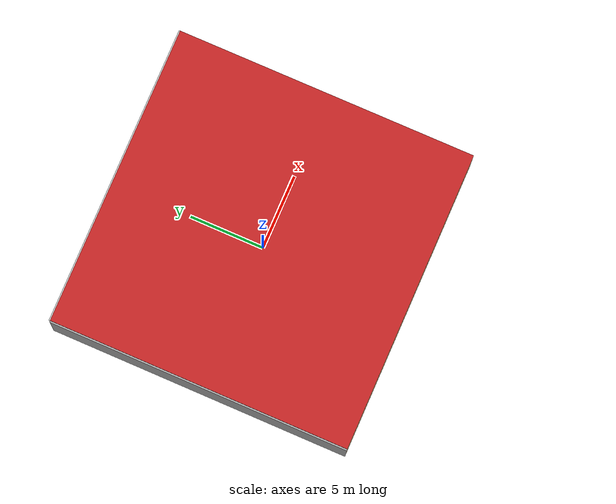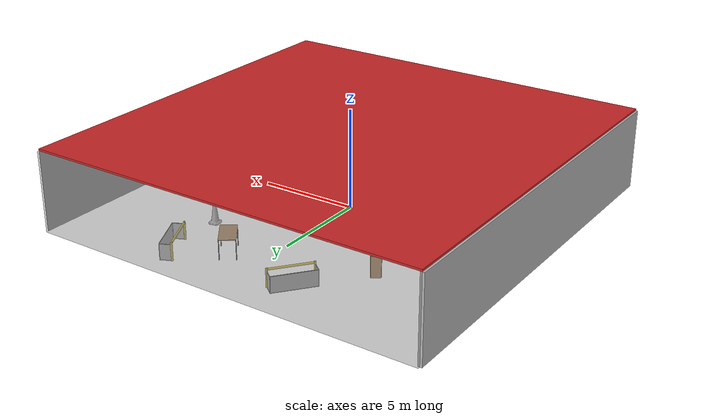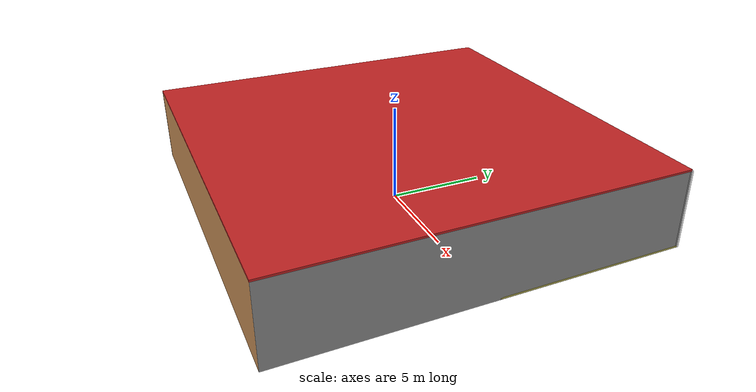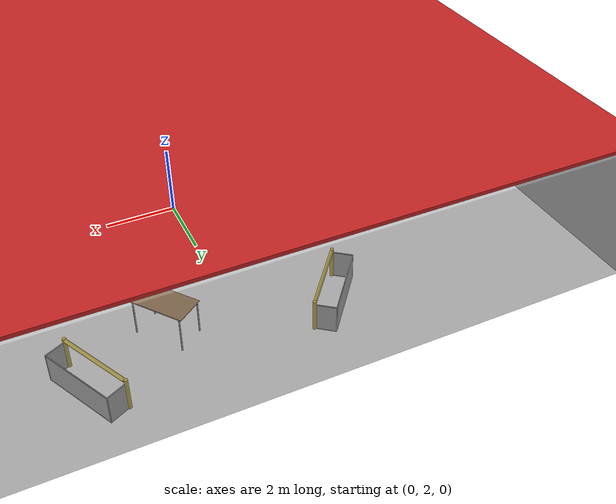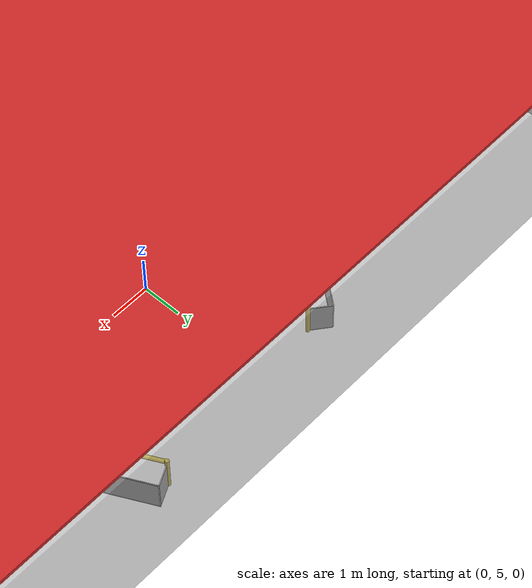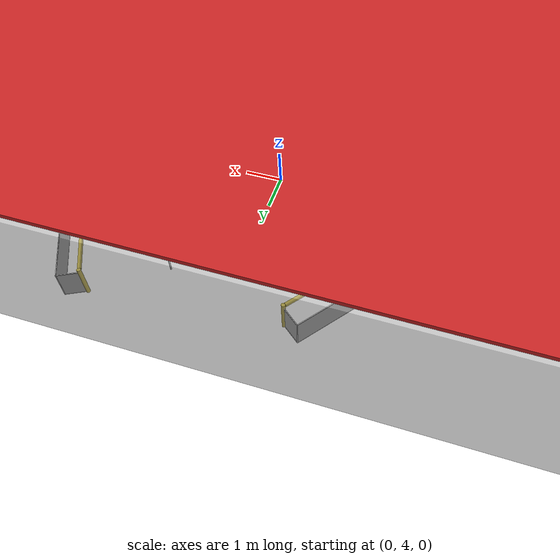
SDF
<sdf version="1.4">
 <world name="default">
  <physics type="ode">
   <max_step_size>0.001</max_step_size>
   <real_time_factor>1</real_time_factor>
   <real_time_update_rate>1000</real_time_update_rate>
   <gravity>0 0 -9.8</gravity>
  </physics>
  <scene><ambient>0.4 0.4 0.4 1</ambient><background>0.7 0.7 0.7 1</background><shadows>1</shadows></scene>
  <model name="Surrounding">
   <static>1</static>
   <link name="Ceiling">
    <collision name="Ceiling_Collision"><geometry><box><size>20 20 0.1</size></box></geometry></collision>
    <visual name="Ceiling_Visual">
     <geometry><box><size>20 20 0.1</size></box></geometry>
     <material>
      <script><uri>file://media/materials/scripts/gazebo.material</uri><name>Gazebo/RedGlow</name></script>
     </material>
    </visual>
    <pose>0 0 4.05 0 0 0</pose>
   </link>
   <link name="Wall_South">
    <collision name="Wall_South_Collision">
     <geometry><box><size>20 0 4</size></box></geometry>
     <pose>0 0 2 0 -0 0</pose>
    </collision>
    <visual name="Wall_South_Visual">
     <pose>0 0 2 0 -0 0</pose>
     <geometry><box><size>20 0 4</size></box></geometry>
     <material>
      <script><uri>file://media/materials/scripts/gazebo.material</uri><name>Gazebo/Wood</name></script>
     </material>
    </visual>
    <velocity_decay><linear>0</linear><angular>0</angular></velocity_decay>
    <pose>0 -10 0 0 -0 0</pose>
   </link>
   <link name="Wall_East">
    <collision name="Wall_21_Collision">
     <geometry><box><size>20 0 4</size></box></geometry>
     <pose>0 0 2 0 -0 0</pose>
    </collision>
    <visual name="Wall_21_Visual">
     <pose>0 0 2 0 -0 0</pose>
     <geometry><box><size>20 0 4</size></box></geometry>
     <material>
      <script><uri>file://media/materials/scripts/gazebo.material</uri><name>Gazebo/GreyGradientSky</name></script>
     </material>
    </visual>
    <velocity_decay><linear>0</linear><angular>0</angular></velocity_decay>
    <pose>10 0 0 0 -0 1.5708</pose>
   </link>
   <link name="Wall_North">
    <collision name="Wall_22_Collision">
     <geometry><box><size>20 0.2 4</size></box></geometry>
     <pose>0 0 2 0 -0 0</pose>
    </collision>
    <visual name="Wall_22_Visual">
     <pose>0 0 2 0 -0 0</pose>
     <geometry><box><size>20 0.2 4</size></box></geometry>
     <material>
      <script><uri>file://media/materials/scripts/gazebo.material</uri><name>Gazebo/GreyTransparent</name></script>
     </material>
    </visual>
    <velocity_decay><linear>0</linear><angular>0</angular></velocity_decay>
    <pose>0 10 0 0 -0 0</pose>
   </link>
   <link name="Wall_West">
    <collision name="Wall_23_Collision">
     <geometry><box><size>20 0.2 4</size></box></geometry>
     <pose>0 0 2 0 -0 0</pose>
    </collision>
    <visual name="Wall_23_Visual">
     <pose>0 0 2 0 -0 0</pose>
     <geometry><box><size>20 0.2 4</size></box></geometry>
     <material>
      <script><uri>file://media/materials/scripts/gazebo.material</uri><name>Gazebo/PioneerBody</name></script>
     </material>
    </visual>
    <velocity_decay><linear>0</linear><angular>0</angular></velocity_decay>
    <pose>-10 0 0 0 0 -1.5708</pose>
   </link>
   <link name="Ground_link">
    <collision name="collision">
     <pose>0 0 .05 0 -0 0</pose>
     <geometry><box><size>20 20 0.1</size></box></geometry>
    </collision>
    <visual name="visual">
     <pose>0 0 .05 0 -0 0</pose>
     <geometry><box><size>20 20 0.1</size></box></geometry>
     <material>
      <script>
       <uri>file://media/materials/scripts/gazebo.material</uri>
       <name>Gazebo/YellowTransparent</name>
      </script>
     </material>
    </visual>
   </link>
   <static>1</static>
  </model>
  <spherical_coordinates>
   <surface_model>EARTH_WGS84</surface_model>
   <latitude_deg>0</latitude_deg>
   <longitude_deg>0</longitude_deg>
   <elevation>0</elevation>
   <heading_deg>0</heading_deg>
  </spherical_coordinates>
  <light name="lightball_0" type="diffuse">
   <diffuse>0.8 0.8 0.8 1</diffuse>
   <specular>0.2 0.2 0.2 1</specular>
   <attenuation>
    <range>100</range>
    <constant>0.7</constant>
    <linear>0.01</linear>
    <quadratic>0.001</quadratic>
   </attenuation>
   <direction>-0.5 0.1 -0.9</direction>
   <pose>-1.46615616055 1.88646837623 3.45548741838 0 0 0</pose>
  </light>
  <light name="lightball_1" type="diffuse">
   <diffuse>0.8 0.8 0.8 1</diffuse>
   <specular>0.2 0.2 0.2 1</specular>
   <attenuation>
    <range>100</range>
    <constant>0.7</constant>
    <linear>0.01</linear>
    <quadratic>0.001</quadratic>
   </attenuation>
   <direction>-0.5 0.1 -0.9</direction>
   <pose>-5.46675970544 1.58656633452 1.1051964291 0 0 0</pose>
  </light>
  <light name="lightball_2" type="diffuse">
   <diffuse>0.8 0.8 0.8 1</diffuse>
   <specular>0.2 0.2 0.2 1</specular>
   <attenuation>
    <range>100</range>
    <constant>0.7</constant>
    <linear>0.01</linear>
    <quadratic>0.001</quadratic>
   </attenuation>
   <direction>-0.5 0.1 -0.9</direction>
   <pose>-2.60723093299 -0.153411435441 2.06181290509 0 0 0</pose>
  </light>
  <include><uri>model://cabinet</uri><pose>-4.73984015815 4.97349414283 0 0 0 2.17088558973</pose></include>
  <include>
   <uri>model://robocup_3Dsim_goal</uri>
   <pose>-2.22196490444 7.61292372363 0 0 0 2.47104706228</pose>
  </include>
  <include><uri>model://cabinet</uri><pose>0.704225304383 -1.4691574446 0 0 0 2.98581727033</pose></include>
  <include><uri>model://table</uri><pose>1.76484619062 6.94121135768 0 0 0 2.21519333761</pose></include>
  <include>
   <uri>model://construction_cone</uri>
   <pose>4.05484206657 1.38145626126 0 0 0 0.152470011032</pose>
  </include>
  <include>
   <uri>model://construction_cone</uri>
   <pose>4.24518882251 4.96187362377 0 0 0 1.78405898731</pose>
  </include>
  <include>
   <uri>model://robocup_3Dsim_goal</uri>
   <pose>3.78167803036 7.97655122455 0 0 0 0.461689058961</pose>
  </include>
  <include>
   <uri>model://textured_shapes</uri>
   <pose>7.35708846822 -4.13497856885 0 0 0 3.08266337135</pose>
  </include>
  <include><uri>model://cabinet</uri><pose>7.10547675875 -1.32098912959 0 0 0 1.24126474353</pose></include>
  <include>
   <uri>model://construction_cone</uri>
   <pose>7.126051752 2.15729333337 0 0 0 0.946493038524</pose>
  </include>
 </world>
</sdf>

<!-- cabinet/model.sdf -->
<sdf version="1.5">
  <model name="cabinet">
    <static>true</static>
    <link name="cabinet_bottom_plate">
      <inertial>
        <pose>0 0 -1 0 0 0</pose>
        <inertia>
          <ixx>2.050000</ixx>
          <ixy>0</ixy>
          <ixz>0</ixz>
          <iyy>2.050000</iyy>
          <iyz>0</iyz>
          <izz>2.050000</izz>
        </inertia>
        <mass>25.000000</mass>
      </inertial>
      <collision name="cabinet_bottom_plate_geom">
        <pose>0 0 0.010000 0 0 0</pose>
        <geometry>
          <box>
            <size>0.450000 0.450000 0.020000</size>
          </box>
        </geometry>
      </collision>
      <visual name="cabinet_bottom_plate_geom_visual">
        <pose>0 0 0.010000 0 0 0</pose>
        <geometry>
          <box>
            <size>0.450000 0.450000 0.020000</size>
          </box>
        </geometry>
        <material>
          <script>
            <uri>model://media/materials/scripts/gazebo.material</uri>
            <name>Gazebo/Wood</name>
          </script>
        </material>
      </visual>
      <collision name="cabinet_bottom_plate_geom_cabinet_back_plate">
        <pose>0.235000 0 0.510000 0 0 0</pose>
        <geometry>
          <box>
            <size>0.020000 0.450000 1.020000</size>
          </box>
        </geometry>
      </collision>
      <visual name="cabinet_bottom_plate_geom_cabinet_back_plate_visual">
        <pose>0.235000 0 0.510000 0 0 0</pose>
        <geometry>
          <box>
            <size>0.020000 0.450000 1.020000</size>
          </box>
        </geometry>
        <material>
          <script>
            <uri>model://media/materials/scripts/gazebo.material</uri>
            <name>Gazebo/Wood</name>
          </script>
        </material>
      </visual>
      <collision name="cabinet_bottom_plate_geom_cabinet_left_plate">
        <pose>0 0.235000 0.510000 0 0 0</pose>
        <geometry>
          <box>
            <size>0.450000 0.020000 1.020000</size>
          </box>
        </geometry>
      </collision>
      <visual name="cabinet_bottom_plate_geom_cabinet_left_plate_visual">
        <pose>0 0.235000 0.510000 0 0 0</pose>
        <geometry>
          <box>
            <size>0.450000 0.020000 1.020000</size>
          </box>
        </geometry>
        <material>
          <script>
            <uri>model://media/materials/scripts/gazebo.material</uri>
            <name>Gazebo/Wood</name>
          </script>
        </material>
      </visual>
      <collision name="cabinet_bottom_plate_geom_cabinet_middle_plate">
        <pose>0 0 0.510000 0 0 0</pose>
        <geometry>
          <box>
            <size>0.450000 0.450000 0.020000</size>
          </box>
        </geometry>
      </collision>
      <visual name="cabinet_bottom_plate_geom_cabinet_middle_plate_visual">
        <pose>0 0 0.510000 0 0 0</pose>
        <geometry>
          <box>
            <size>0.450000 0.450000 0.020000</size>
          </box>
        </geometry>
        <material>
          <script>
            <uri>model://media/materials/scripts/gazebo.material</uri>
            <name>Gazebo/Wood</name>
          </script>
        </material>
      </visual>
      <collision name="cabinet_bottom_plate_geom_cabinet_right_plate">
        <pose>0 -0.235000 0.510000 0 0 0</pose>
        <geometry>
          <box>
            <size>0.450000 0.020000 1.020000</size>
          </box>
        </geometry>
      </collision>
      <visual name="cabinet_bottom_plate_geom_cabinet_right_plate_visual">
        <pose>0 -0.235000 0.510000 0 0 0</pose>
        <geometry>
          <box>
            <size>0.450000 0.020000 1.020000</size>
          </box>
        </geometry>
        <material>
          <script>
            <uri>model://media/materials/scripts/gazebo.material</uri>
            <name>Gazebo/Wood</name>
          </script>
        </material>
      </visual>
      <collision name="cabinet_bottom_plate_geom_cabinet_top_plate">
        <pose>0 0 1.010000 0 0 0</pose>
        <geometry>
          <box>
            <size>0.450000 0.450000 0.020000</size>
          </box>
        </geometry>
      </collision>
      <visual name="cabinet_bottom_plate_geom_cabinet_top_plate_visual">
        <pose>0 0 1.010000 0 0 0</pose>
        <geometry>
          <box>
            <size>0.450000 0.450000 0.020000</size>
          </box>
        </geometry>
        <material>
          <script>
            <uri>model://media/materials/scripts/gazebo.material</uri>
            <name>Gazebo/Wood</name>
          </script>
        </material>
      </visual>
    </link>
  </model>
</sdf>

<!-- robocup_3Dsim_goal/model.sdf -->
<sdf version="1.5">
  <model name="robocup_3d_goal">
    <static>true</static>
    <link name="left_post">
      <pose>0 1.05 0.45 0 0 0</pose>
      <collision name="collision">
        <geometry>
          <cylinder>
            <radius>0.05</radius>
            <length>0.9</length>
          </cylinder>
        </geometry>
      </collision>
      <visual name="visual">
        <geometry>
          <cylinder>
            <radius>0.05</radius>
            <length>0.9</length>
          </cylinder>
        </geometry>
        <material>
          <script>
            <uri>file://media/materials/scripts/gazebo.material</uri>
            <name>Gazebo/ZincYellow</name>
          </script>
        </material>
      </visual>
    </link>
    <link name="left_support_horiz_lower">
      <pose>0.30 1.05 0.01 0 0 0</pose>
      <collision name="collision">
        <geometry>
          <box>
            <size>0.50 0.02 0.02</size>
          </box>
        </geometry>
      </collision>
      <visual name="visual">
        <geometry>
          <box>
            <size>0.50 0.02 0.02</size>
          </box>
        </geometry>
        <material>
          <script>
            <uri>file://media/materials/scripts/gazebo.material</uri>
            <name>Gazebo/White</name>
          </script>
        </material>
      </visual>
    </link>
    <link name="left_support_horiz_upper">
      <pose>0.30 1.05 0.79 0 0 0</pose>
      <collision name="collision">
        <geometry>
          <box>
            <size>0.50 0.02 0.02</size>
          </box>
        </geometry>
      </collision>
      <visual name="visual">
        <geometry>
          <box>
            <size>0.50 0.02 0.02</size>
          </box>
        </geometry>
        <material>
          <script>
            <uri>file://media/materials/scripts/gazebo.material</uri>
            <name>Gazebo/White</name>
          </script>
        </material>
      </visual>
    </link>
    <link name="left_support_vertical">
      <pose>0.56 1.05 0.4 0 1.5708 0</pose>
      <collision name="collision">
        <geometry>
          <box>
            <size>0.80 0.02 0.02</size>
          </box>
        </geometry>
      </collision>
      <visual name="visual">
        <geometry>
          <box>
            <size>0.80 0.02 0.02</size>
          </box>
        </geometry>
        <material>
          <script>
            <uri>file://media/materials/scripts/gazebo.material</uri>
            <name>Gazebo/White</name>
          </script>
        </material>
      </visual>
    </link>
    <link name="right_support_horiz_lower">
      <pose>0.30 -1.05 0.01 0 0 0</pose>
      <collision name="collision">
        <geometry>
          <box>
            <size>0.50 0.02 0.02</size>
          </box>
        </geometry>
      </collision>
      <visual name="visual">
        <geometry>
          <box>
            <size>0.50 0.02 0.02</size>
          </box>
        </geometry>
        <material>
          <script>
            <uri>file://media/materials/scripts/gazebo.material</uri>
            <name>Gazebo/White</name>
          </script>
        </material>
      </visual>
    </link>
    <link name="right_support_horiz_upper">
      <pose>0.30 -1.05 0.79 0 0 0</pose>
      <collision name="collision">
        <geometry>
          <box>
            <size>0.50 0.02 0.02</size>
          </box>
        </geometry>
      </collision>
      <visual name="visual">
        <geometry>
          <box>
            <size>0.50 0.02 0.02</size>
          </box>
        </geometry>
        <material>
          <script>
            <uri>file://media/materials/scripts/gazebo.material</uri>
            <name>Gazebo/White</name>
          </script>
        </material>
      </visual>
    </link>
    <link name="right_support_vertical">
      <pose>0.56 -1.05 0.4 0 1.5708 0</pose>
      <collision name="collision">
        <geometry>
          <box>
            <size>0.80 0.02 0.02</size>
          </box>
        </geometry>
      </collision>
      <visual name="visual">
        <geometry>
          <box>
            <size>0.80 0.02 0.02</size>
          </box>
        </geometry>
        <material>
          <script>
            <uri>file://media/materials/scripts/gazebo.material</uri>
            <name>Gazebo/White</name>
          </script>
        </material>
      </visual>
    </link>
    <link name="center_support_horiz_lower">
      <pose>0.56 0 0.01 0 1.5708 0</pose>
      <collision name="collision">
        <geometry>
          <box>
            <size>0.02 2.08 0.02</size>
          </box>
        </geometry>
      </collision>
      <visual name="visual">
        <geometry>
          <box>
            <size>0.02 2.08 0.02</size>
          </box>
        </geometry>
        <material>
          <script>
            <uri>file://media/materials/scripts/gazebo.material</uri>
            <name>Gazebo/White</name>
          </script>
        </material>
      </visual>
    </link>
    <link name="center_support_horiz_upper">
      <pose>0.56 0 0.79 0 1.5708 0</pose>
      <collision name="collision">
        <geometry>
          <box>
            <size>0.02 2.08 0.02</size>
          </box>
        </geometry>
      </collision>
      <visual name="visual">
        <geometry>
          <box>
            <size>0.02 2.08 0.02</size>
          </box>
        </geometry>
        <material>
          <script>
            <uri>file://media/materials/scripts/gazebo.material</uri>
            <name>Gazebo/White</name>
          </script>
        </material>
      </visual>
    </link>
    <link name="right_post">
      <pose>0 -1.05 0.45 0 0 0</pose>
      <collision name="collision">
        <geometry>
          <cylinder>
            <radius>0.05</radius>
            <length>0.9</length>
          </cylinder>
        </geometry>
      </collision>
      <visual name="visual">
        <geometry>
          <cylinder>
            <radius>0.05</radius>
            <length>0.9</length>
          </cylinder>
        </geometry>
        <material>
          <script>
            <uri>file://media/materials/scripts/gazebo.material</uri>
            <name>Gazebo/ZincYellow</name>
          </script>
        </material>
      </visual>
    </link>
    <link name="crossbar">
      <pose>0 0 0.85 1.57 1.57 0</pose>
      <collision name="collision">
        <geometry>
          <cylinder>
            <radius>0.05</radius>
            <length>2.0</length>
          </cylinder>
        </geometry>
      </collision>
      <visual name="visual">
        <geometry>
          <cylinder>
            <radius>0.05</radius>
            <length>2.0</length>
          </cylinder>
        </geometry>
        <material>
          <script>
            <uri>file://media/materials/scripts/gazebo.material</uri>
            <name>Gazebo/ZincYellow</name>
          </script>
        </material>
      </visual>
    </link>
    <link name="center_net">
      <pose>0.56 0 0.40 0 0 0</pose>
      <collision name="collision">
        <geometry>
          <box>
            <size>0.01 2.1 0.80</size>
          </box>
        </geometry>
      </collision>
      <visual name="visual">
        <geometry>
          <box>
            <size>0.01 2.1 0.80</size>
          </box>
        </geometry>
        <material>
          <script>
            <uri>model://../model_source/models/robocup09_spl_field/materials/scripts/</uri>
            <uri>model://../model_source/models/robocup09_spl_field/materials/textures/</uri>
            <name>RoboCup/Net</name>
          </script>
        </material>
      </visual>
    </link>
    <link name="left_net">
      <pose>0.30 1.05 0.40 0 0 0</pose>
      <collision name="collision">
        <geometry>
          <box>
            <size>0.50 0.01 0.76</size>
          </box>
        </geometry>
      </collision>
      <visual name="visual">
        <geometry>
          <box>
            <size>0.50 0.01 0.76</size>
          </box>
        </geometry>
        <material>
          <script>
            <uri>model://../model_source/models/robocup09_spl_field/materials/scripts/</uri>
            <uri>model://../model_source/models/robocup09_spl_field/materials/textures/</uri>
            <name>RoboCup/Net</name>
          </script>
        </material>
      </visual>
    </link>
    <link name="right_net">
      <pose>0.30 -1.05 0.40 0 0 0</pose>
      <collision name="collision">
        <geometry>
          <box>
            <size>0.50 0.01 0.76</size>
          </box>
        </geometry>
      </collision>
      <visual name="visual">
        <geometry>
          <box>
            <size>0.50 0.01 0.76</size>
          </box>
        </geometry>
        <material>
          <script>
            <uri>model://../model_source/models/robocup09_spl_field/materials/scripts/</uri>
            <uri>model://../model_source/models/robocup09_spl_field/materials/textures/</uri>
            <name>RoboCup/Net</name>
          </script>
        </material>
      </visual>
    </link>
  </model>
</sdf>

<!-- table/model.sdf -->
<sdf version="1.5">
  <model name="table">
    <static>true</static>
    <link name="link">
      <collision name="surface">
        <pose>0 0 1.0 0 0 0</pose>
        <geometry>
          <box>
            <size>1.5 0.8 0.03</size>
          </box>
        </geometry>
        <surface>
          <friction>
            <ode>
              <mu>0.6</mu>
              <mu2>0.6</mu2>
            </ode>
          </friction>
        </surface>
      </collision>
      <visual name="visual1">
        <pose>0 0 1.0 0 0 0</pose>
        <geometry>
          <box>
            <size>1.5 0.8 0.03</size>
          </box>
        </geometry>
        <material>
          <script>
            <uri>model://media/materials/scripts/gazebo.material</uri>
            <name>Gazebo/Wood</name>
          </script>
        </material>
      </visual>
      <collision name="front_left_leg">
        <pose>0.68 0.38 0.5 0 0 0</pose>
        <geometry>
          <cylinder>
            <radius>0.02</radius>
            <length>1.0</length>
          </cylinder>
        </geometry>
      </collision>
      <visual name="front_left_leg">
        <pose>0.68 0.38 0.5 0 0 0</pose>
        <geometry>
          <cylinder>
            <radius>0.02</radius>
            <length>1.0</length>
          </cylinder>
        </geometry>
        <material>
          <script>
            <uri>model://media/materials/scripts/gazebo.material</uri>
            <name>Gazebo/Grey</name>
          </script>
        </material>
      </visual>
      <collision name="front_right_leg">
        <pose>0.68 -0.38 0.5 0 0 0</pose>
        <geometry>
          <cylinder>
            <radius>0.02</radius>
            <length>1.0</length>
          </cylinder>
        </geometry>
      </collision>
      <visual name="front_right_leg">
        <pose>0.68 -0.38 0.5 0 0 0</pose>
        <geometry>
          <cylinder>
            <radius>0.02</radius>
            <length>1.0</length>
          </cylinder>
        </geometry>
        <material>
          <script>
            <uri>model://media/materials/scripts/gazebo.material</uri>
            <name>Gazebo/Grey</name>
          </script>
        </material>
      </visual>
      <collision name="back_right_leg">
        <pose>-0.68 -0.38 0.5 0 0 0</pose>
        <geometry>
          <cylinder>
            <radius>0.02</radius>
            <length>1.0</length>
          </cylinder>
        </geometry>
      </collision>
      <visual name="back_right_leg">
        <pose>-0.68 -0.38 0.5 0 0 0</pose>
        <geometry>
          <cylinder>
            <radius>0.02</radius>
            <length>1.0</length>
          </cylinder>
        </geometry>
        <material>
          <script>
            <uri>model://media/materials/scripts/gazebo.material</uri>
            <name>Gazebo/Grey</name>
          </script>
        </material>
      </visual>
      <collision name="back_left_leg">
        <pose>-0.68 0.38 0.5 0 0 0</pose>
        <geometry>
          <cylinder>
            <radius>0.02</radius>
            <length>1.0</length>
          </cylinder>
        </geometry>
      </collision>
      <visual name="back_left_leg">
        <pose>-0.68 0.38 0.5 0 0 0</pose>
        <geometry>
          <cylinder>
            <radius>0.02</radius>
            <length>1.0</length>
          </cylinder>
        </geometry>
        <material>
          <script>
            <uri>model://media/materials/scripts/gazebo.material</uri>
            <name>Gazebo/Grey</name>
          </script>
        </material>
      </visual>
    </link>
  </model>
</sdf>

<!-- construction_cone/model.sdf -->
<sdf version="1.5">
  <model name="Construction Cone">
    <link name="link">
      <collision name="collision">
        <geometry>
          <mesh>
            <scale>10 10 10</scale>
            <uri>file://isr-testbed/construction_cone/meshes/construction_cone.dae</uri>
          </mesh>
        </geometry>
      </collision>
      <visual name="visual">
        <geometry>
          <mesh>
            <scale>10 10 10</scale>
            <uri>file://isr-testbed/construction_cone/meshes/construction_cone.dae</uri>
          </mesh>
        </geometry>
      </visual>
    </link>
  </model>
</sdf>

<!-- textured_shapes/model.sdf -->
<sdf version="1.6">
  <model name="textured_shapes">
    <pose>0 0 0.5 0 0 0</pose>
    <link name="box">
      <pose>0 -1.5 0 0 0 0</pose>
      <collision name="collision">
        <geometry>
          <box>
            <size>1 1 1</size>
          </box>
        </geometry>
      </collision>
      <visual name="visual">
        <geometry>
          <box>
            <size>1 1 1</size>
          </box>
        </geometry>
        <material>
          <script>
            <uri>model://../model_source/models/textured_shapes/materials/scripts</uri>
            <uri>model://../model_source/models/textured_shapes/materials/textures</uri>
            <name>TexturedShape/Squares</name>
          </script>
        </material>
      </visual>
    </link>
    <link name="sphere">
      <collision name="collision">
        <geometry>
          <sphere>
            <radius>0.5</radius>
          </sphere>
        </geometry>
      </collision>
      <visual name="visual">
        <geometry>
          <sphere>
            <radius>0.5</radius>
          </sphere>
        </geometry>
        <material>
          <script>
            <uri>model://../model_source/models/textured_shapes/materials/scripts</uri>
            <uri>model://../model_source/models/textured_shapes/materials/textures</uri>
            <name>TexturedShape/Squares</name>
          </script>
        </material>
      </visual>
    </link>
    <link name="cylinder">
      <pose>0 1.5 0 0 0 0</pose>
      <collision name="collision">
        <geometry>
          <cylinder>
            <radius>0.5</radius>
            <length>1</length>
          </cylinder>
        </geometry>
      </collision>
      <visual name="visual">
        <geometry>
          <cylinder>
            <radius>0.5</radius>
            <length>1</length>
          </cylinder>
        </geometry>
        <material>
          <script>
            <uri>model://../model_source/models/textured_shapes/materials/scripts</uri>
            <uri>model://../model_source/models/textured_shapes/materials/textures</uri>
            <name>TexturedShape/Squares</name>
          </script>
        </material>
      </visual>
    </link>
  </model>
</sdf>
